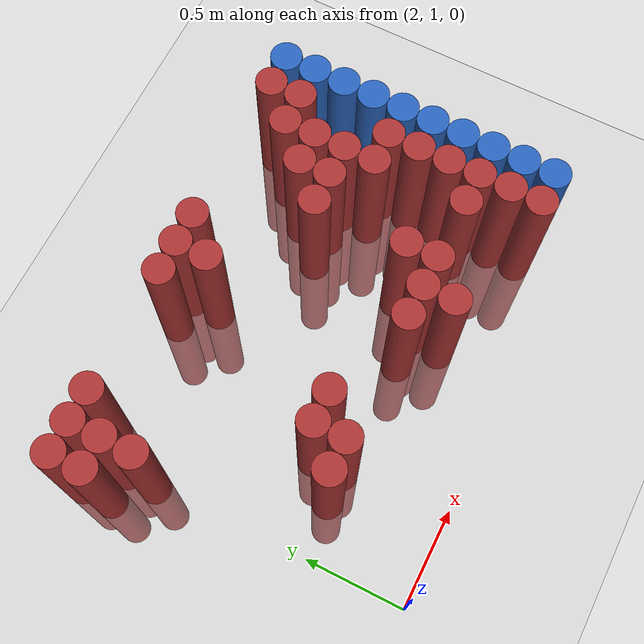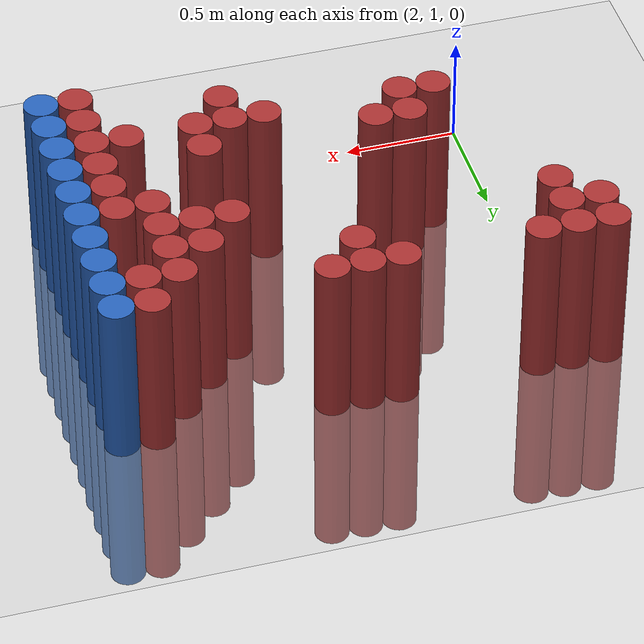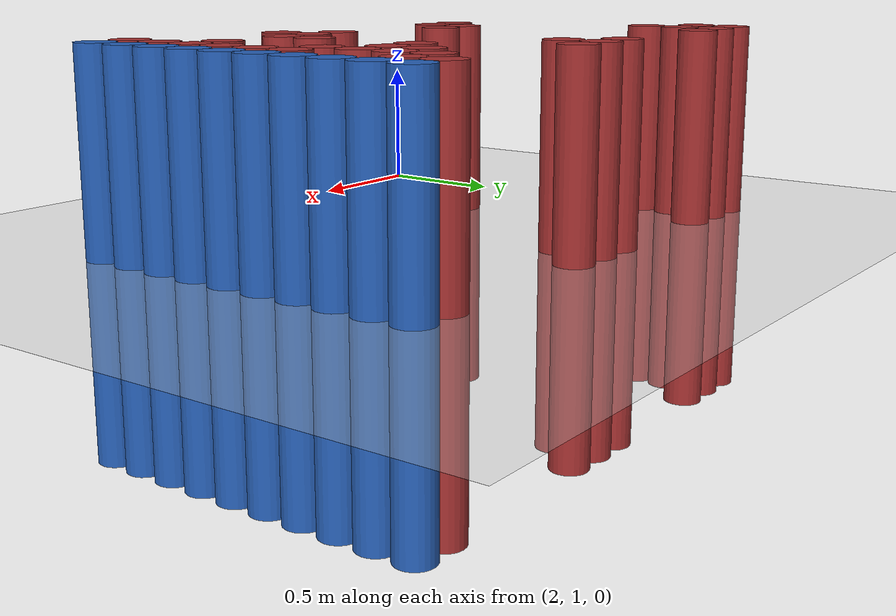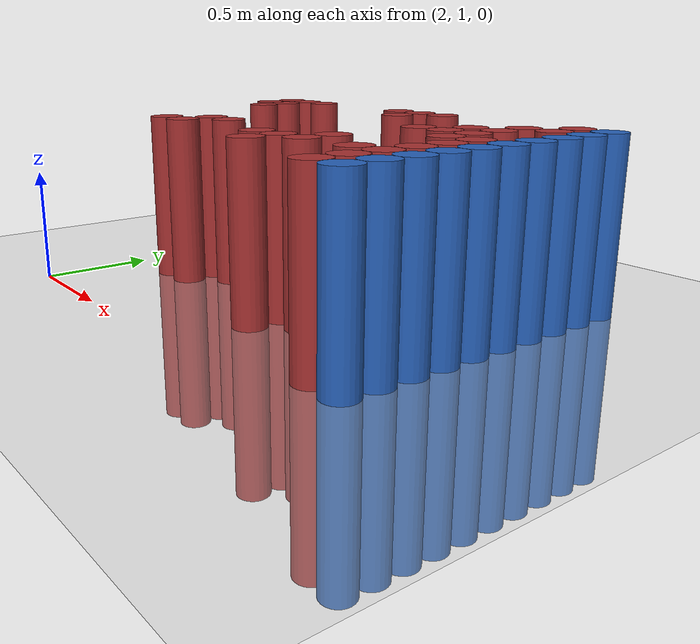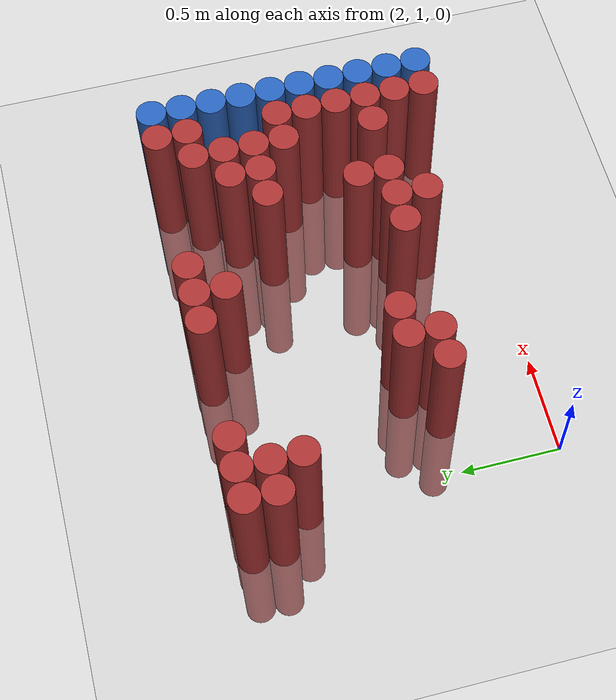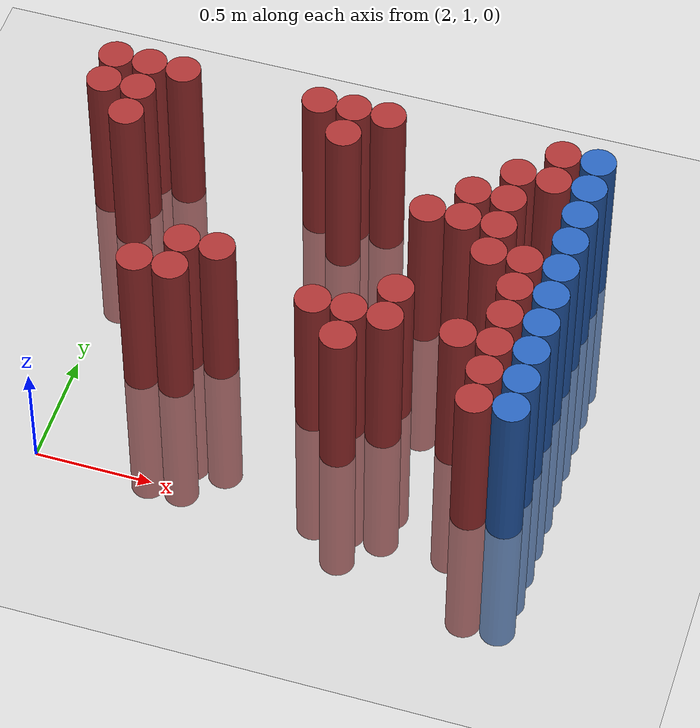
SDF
<sdf version="1.6">
 <world name="default">
  <model name="ground_plane">
   <static>1</static>
   <link name="link">
    <collision name="collision">
     <geometry><plane><normal>0 0 1</normal><size>100 100</size></plane></geometry>
     <surface><friction><ode><mu>100</mu><mu2>50</mu2></ode></friction></surface>
    </collision>
    <visual name="visual">
     <cast_shadows>0</cast_shadows>
     <geometry><plane><normal>0 0 1</normal><size>100 100</size></plane></geometry>
     <material>
      <script><uri>file://media/materials/scripts/gazebo.material</uri><name>Gazebo/Grey</name></script>
     </material>
    </visual>
   </link>
  </model>
  <model name="unit_cylinder_132">
   <static>1</static>
   <pose>3.925000 1.375000 0.000000 0.000000 0.000000 0.000000</pose>
   <link name="link">
    <inertial>
     <mass>1</mass>
     <inertia><ixx>0.145833</ixx><ixy>0</ixy><ixz>0</ixz><iyy>0.145833</iyy><iyz>0</iyz><izz>0.125</izz></inertia>
    </inertial>
    <collision name="collision">
     <geometry><cylinder><radius>0.075000</radius><length>1.5</length></cylinder></geometry>
    </collision>
    <visual name="visual">
     <geometry><cylinder><radius>0.075000</radius><length>1.5</length></cylinder></geometry>
     <material>
      <ambient>0.152000 0.379000 0.720000 1</ambient>
      <diffuse>0.152000 0.379000 0.720000 1</diffuse>
     </material>
     <material>
      <script><name>Gazebo/Grey</name><uri>file://media/materials/scripts/gazebo.material</uri></script>
     </material>
    </visual>
   </link>
  </model>
  <model name="unit_cylinder_134">
   <static>1</static>
   <pose>3.925000 1.525000 0.000000 0.000000 0.000000 0.000000</pose>
   <link name="link">
    <inertial>
     <mass>1</mass>
     <inertia><ixx>0.145833</ixx><ixy>0</ixy><ixz>0</ixz><iyy>0.145833</iyy><iyz>0</iyz><izz>0.125</izz></inertia>
    </inertial>
    <collision name="collision">
     <geometry><cylinder><radius>0.075000</radius><length>1.5</length></cylinder></geometry>
    </collision>
    <visual name="visual">
     <geometry><cylinder><radius>0.075000</radius><length>1.5</length></cylinder></geometry>
     <material>
      <ambient>0.152000 0.379000 0.720000 1</ambient>
      <diffuse>0.152000 0.379000 0.720000 1</diffuse>
     </material>
     <material>
      <script><name>Gazebo/Grey</name><uri>file://media/materials/scripts/gazebo.material</uri></script>
     </material>
    </visual>
   </link>
  </model>
  <model name="unit_cylinder_136">
   <static>1</static>
   <pose>3.925000 1.675000 0.000000 0.000000 0.000000 0.000000</pose>
   <link name="link">
    <inertial>
     <mass>1</mass>
     <inertia><ixx>0.145833</ixx><ixy>0</ixy><ixz>0</ixz><iyy>0.145833</iyy><iyz>0</iyz><izz>0.125</izz></inertia>
    </inertial>
    <collision name="collision">
     <geometry><cylinder><radius>0.075000</radius><length>1.5</length></cylinder></geometry>
    </collision>
    <visual name="visual">
     <geometry><cylinder><radius>0.075000</radius><length>1.5</length></cylinder></geometry>
     <material>
      <ambient>0.152000 0.379000 0.720000 1</ambient>
      <diffuse>0.152000 0.379000 0.720000 1</diffuse>
     </material>
     <material>
      <script><name>Gazebo/Grey</name><uri>file://media/materials/scripts/gazebo.material</uri></script>
     </material>
    </visual>
   </link>
  </model>
  <model name="unit_cylinder_138">
   <static>1</static>
   <pose>3.925000 1.825000 0.000000 0.000000 0.000000 0.000000</pose>
   <link name="link">
    <inertial>
     <mass>1</mass>
     <inertia><ixx>0.145833</ixx><ixy>0</ixy><ixz>0</ixz><iyy>0.145833</iyy><iyz>0</iyz><izz>0.125</izz></inertia>
    </inertial>
    <collision name="collision">
     <geometry><cylinder><radius>0.075000</radius><length>1.5</length></cylinder></geometry>
    </collision>
    <visual name="visual">
     <geometry><cylinder><radius>0.075000</radius><length>1.5</length></cylinder></geometry>
     <material>
      <ambient>0.152000 0.379000 0.720000 1</ambient>
      <diffuse>0.152000 0.379000 0.720000 1</diffuse>
     </material>
     <material>
      <script><name>Gazebo/Grey</name><uri>file://media/materials/scripts/gazebo.material</uri></script>
     </material>
    </visual>
   </link>
  </model>
  <model name="unit_cylinder_140">
   <static>1</static>
   <pose>3.925000 1.975000 0.000000 0.000000 0.000000 0.000000</pose>
   <link name="link">
    <inertial>
     <mass>1</mass>
     <inertia><ixx>0.145833</ixx><ixy>0</ixy><ixz>0</ixz><iyy>0.145833</iyy><iyz>0</iyz><izz>0.125</izz></inertia>
    </inertial>
    <collision name="collision">
     <geometry><cylinder><radius>0.075000</radius><length>1.5</length></cylinder></geometry>
    </collision>
    <visual name="visual">
     <geometry><cylinder><radius>0.075000</radius><length>1.5</length></cylinder></geometry>
     <material>
      <ambient>0.152000 0.379000 0.720000 1</ambient>
      <diffuse>0.152000 0.379000 0.720000 1</diffuse>
     </material>
     <material>
      <script><name>Gazebo/Grey</name><uri>file://media/materials/scripts/gazebo.material</uri></script>
     </material>
    </visual>
   </link>
  </model>
  <model name="unit_cylinder_142">
   <static>1</static>
   <pose>3.925000 2.125000 0.000000 0.000000 0.000000 0.000000</pose>
   <link name="link">
    <inertial>
     <mass>1</mass>
     <inertia><ixx>0.145833</ixx><ixy>0</ixy><ixz>0</ixz><iyy>0.145833</iyy><iyz>0</iyz><izz>0.125</izz></inertia>
    </inertial>
    <collision name="collision">
     <geometry><cylinder><radius>0.075000</radius><length>1.5</length></cylinder></geometry>
    </collision>
    <visual name="visual">
     <geometry><cylinder><radius>0.075000</radius><length>1.5</length></cylinder></geometry>
     <material>
      <ambient>0.152000 0.379000 0.720000 1</ambient>
      <diffuse>0.152000 0.379000 0.720000 1</diffuse>
     </material>
     <material>
      <script><name>Gazebo/Grey</name><uri>file://media/materials/scripts/gazebo.material</uri></script>
     </material>
    </visual>
   </link>
  </model>
  <model name="unit_cylinder_144">
   <static>1</static>
   <pose>3.925000 2.275000 0.000000 0.000000 0.000000 0.000000</pose>
   <link name="link">
    <inertial>
     <mass>1</mass>
     <inertia><ixx>0.145833</ixx><ixy>0</ixy><ixz>0</ixz><iyy>0.145833</iyy><iyz>0</iyz><izz>0.125</izz></inertia>
    </inertial>
    <collision name="collision">
     <geometry><cylinder><radius>0.075000</radius><length>1.5</length></cylinder></geometry>
    </collision>
    <visual name="visual">
     <geometry><cylinder><radius>0.075000</radius><length>1.5</length></cylinder></geometry>
     <material>
      <ambient>0.152000 0.379000 0.720000 1</ambient>
      <diffuse>0.152000 0.379000 0.720000 1</diffuse>
     </material>
     <material>
      <script><name>Gazebo/Grey</name><uri>file://media/materials/scripts/gazebo.material</uri></script>
     </material>
    </visual>
   </link>
  </model>
  <model name="unit_cylinder_146">
   <static>1</static>
   <pose>3.925000 2.425000 0.000000 0.000000 0.000000 0.000000</pose>
   <link name="link">
    <inertial>
     <mass>1</mass>
     <inertia><ixx>0.145833</ixx><ixy>0</ixy><ixz>0</ixz><iyy>0.145833</iyy><iyz>0</iyz><izz>0.125</izz></inertia>
    </inertial>
    <collision name="collision">
     <geometry><cylinder><radius>0.075000</radius><length>1.5</length></cylinder></geometry>
    </collision>
    <visual name="visual">
     <geometry><cylinder><radius>0.075000</radius><length>1.5</length></cylinder></geometry>
     <material>
      <ambient>0.152000 0.379000 0.720000 1</ambient>
      <diffuse>0.152000 0.379000 0.720000 1</diffuse>
     </material>
     <material>
      <script><name>Gazebo/Grey</name><uri>file://media/materials/scripts/gazebo.material</uri></script>
     </material>
    </visual>
   </link>
  </model>
  <model name="unit_cylinder_148">
   <static>1</static>
   <pose>3.925000 2.575000 0.000000 0.000000 0.000000 0.000000</pose>
   <link name="link">
    <inertial>
     <mass>1</mass>
     <inertia><ixx>0.145833</ixx><ixy>0</ixy><ixz>0</ixz><iyy>0.145833</iyy><iyz>0</iyz><izz>0.125</izz></inertia>
    </inertial>
    <collision name="collision">
     <geometry><cylinder><radius>0.075000</radius><length>1.5</length></cylinder></geometry>
    </collision>
    <visual name="visual">
     <geometry><cylinder><radius>0.075000</radius><length>1.5</length></cylinder></geometry>
     <material>
      <ambient>0.152000 0.379000 0.720000 1</ambient>
      <diffuse>0.152000 0.379000 0.720000 1</diffuse>
     </material>
     <material>
      <script><name>Gazebo/Grey</name><uri>file://media/materials/scripts/gazebo.material</uri></script>
     </material>
    </visual>
   </link>
  </model>
  <model name="unit_cylinder_379">
   <static>1</static>
   <pose>1.825000 2.425000 0.000000 0.000000 0.000000 0.000000</pose>
   <link name="link">
    <inertial>
     <mass>1</mass>
     <inertia><ixx>0.145833</ixx><ixy>0</ixy><ixz>0</ixz><iyy>0.145833</iyy><iyz>0</iyz><izz>0.125</izz></inertia>
    </inertial>
    <collision name="collision">
     <geometry><cylinder><radius>0.075000</radius><length>1.5</length></cylinder></geometry>
    </collision>
    <visual name="visual">
     <geometry><cylinder><radius>0.075000</radius><length>1.5</length></cylinder></geometry>
     <material>
      <ambient>0.648000 0.192000 0.192000 1</ambient>
      <diffuse>0.648000 0.192000 0.192000 1</diffuse>
     </material>
     <material>
      <script><name>Gazebo/Grey</name><uri>file://media/materials/scripts/gazebo.material</uri></script>
     </material>
    </visual>
   </link>
  </model>
  <model name="unit_cylinder_380">
   <static>1</static>
   <pose>1.825000 2.575000 0.000000 0.000000 0.000000 0.000000</pose>
   <link name="link">
    <inertial>
     <mass>1</mass>
     <inertia><ixx>0.145833</ixx><ixy>0</ixy><ixz>0</ixz><iyy>0.145833</iyy><iyz>0</iyz><izz>0.125</izz></inertia>
    </inertial>
    <collision name="collision">
     <geometry><cylinder><radius>0.075000</radius><length>1.5</length></cylinder></geometry>
    </collision>
    <visual name="visual">
     <geometry><cylinder><radius>0.075000</radius><length>1.5</length></cylinder></geometry>
     <material>
      <ambient>0.648000 0.192000 0.192000 1</ambient>
      <diffuse>0.648000 0.192000 0.192000 1</diffuse>
     </material>
     <material>
      <script><name>Gazebo/Grey</name><uri>file://media/materials/scripts/gazebo.material</uri></script>
     </material>
    </visual>
   </link>
  </model>
  <model name="unit_cylinder_381">
   <static>1</static>
   <pose>1.975000 2.275000 0.000000 0.000000 0.000000 0.000000</pose>
   <link name="link">
    <inertial>
     <mass>1</mass>
     <inertia><ixx>0.145833</ixx><ixy>0</ixy><ixz>0</ixz><iyy>0.145833</iyy><iyz>0</iyz><izz>0.125</izz></inertia>
    </inertial>
    <collision name="collision">
     <geometry><cylinder><radius>0.075000</radius><length>1.5</length></cylinder></geometry>
    </collision>
    <visual name="visual">
     <geometry><cylinder><radius>0.075000</radius><length>1.5</length></cylinder></geometry>
     <material>
      <ambient>0.648000 0.192000 0.192000 1</ambient>
      <diffuse>0.648000 0.192000 0.192000 1</diffuse>
     </material>
     <material>
      <script><name>Gazebo/Grey</name><uri>file://media/materials/scripts/gazebo.material</uri></script>
     </material>
    </visual>
   </link>
  </model>
  <model name="unit_cylinder_382">
   <static>1</static>
   <pose>1.975000 2.425000 0.000000 0.000000 0.000000 0.000000</pose>
   <link name="link">
    <inertial>
     <mass>1</mass>
     <inertia><ixx>0.145833</ixx><ixy>0</ixy><ixz>0</ixz><iyy>0.145833</iyy><iyz>0</iyz><izz>0.125</izz></inertia>
    </inertial>
    <collision name="collision">
     <geometry><cylinder><radius>0.075000</radius><length>1.5</length></cylinder></geometry>
    </collision>
    <visual name="visual">
     <geometry><cylinder><radius>0.075000</radius><length>1.5</length></cylinder></geometry>
     <material>
      <ambient>0.648000 0.192000 0.192000 1</ambient>
      <diffuse>0.648000 0.192000 0.192000 1</diffuse>
     </material>
     <material>
      <script><name>Gazebo/Grey</name><uri>file://media/materials/scripts/gazebo.material</uri></script>
     </material>
    </visual>
   </link>
  </model>
  <model name="unit_cylinder_383">
   <static>1</static>
   <pose>1.975000 2.575000 0.000000 0.000000 0.000000 0.000000</pose>
   <link name="link">
    <inertial>
     <mass>1</mass>
     <inertia><ixx>0.145833</ixx><ixy>0</ixy><ixz>0</ixz><iyy>0.145833</iyy><iyz>0</iyz><izz>0.125</izz></inertia>
    </inertial>
    <collision name="collision">
     <geometry><cylinder><radius>0.075000</radius><length>1.5</length></cylinder></geometry>
    </collision>
    <visual name="visual">
     <geometry><cylinder><radius>0.075000</radius><length>1.5</length></cylinder></geometry>
     <material>
      <ambient>0.648000 0.192000 0.192000 1</ambient>
      <diffuse>0.648000 0.192000 0.192000 1</diffuse>
     </material>
     <material>
      <script><name>Gazebo/Grey</name><uri>file://media/materials/scripts/gazebo.material</uri></script>
     </material>
    </visual>
   </link>
  </model>
  <model name="unit_cylinder_385">
   <static>1</static>
   <pose>2.125000 2.575000 0.000000 0.000000 0.000000 0.000000</pose>
   <link name="link">
    <inertial>
     <mass>1</mass>
     <inertia><ixx>0.145833</ixx><ixy>0</ixy><ixz>0</ixz><iyy>0.145833</iyy><iyz>0</iyz><izz>0.125</izz></inertia>
    </inertial>
    <collision name="collision">
     <geometry><cylinder><radius>0.075000</radius><length>1.5</length></cylinder></geometry>
    </collision>
    <visual name="visual">
     <geometry><cylinder><radius>0.075000</radius><length>1.5</length></cylinder></geometry>
     <material>
      <ambient>0.648000 0.192000 0.192000 1</ambient>
      <diffuse>0.648000 0.192000 0.192000 1</diffuse>
     </material>
     <material>
      <script><name>Gazebo/Grey</name><uri>file://media/materials/scripts/gazebo.material</uri></script>
     </material>
    </visual>
   </link>
  </model>
  <model name="unit_cylinder_391">
   <static>1</static>
   <pose>2.275000 1.525000 0.000000 0.000000 0.000000 0.000000</pose>
   <link name="link">
    <inertial>
     <mass>1</mass>
     <inertia><ixx>0.145833</ixx><ixy>0</ixy><ixz>0</ixz><iyy>0.145833</iyy><iyz>0</iyz><izz>0.125</izz></inertia>
    </inertial>
    <collision name="collision">
     <geometry><cylinder><radius>0.075000</radius><length>1.5</length></cylinder></geometry>
    </collision>
    <visual name="visual">
     <geometry><cylinder><radius>0.075000</radius><length>1.5</length></cylinder></geometry>
     <material>
      <ambient>0.648000 0.192000 0.192000 1</ambient>
      <diffuse>0.648000 0.192000 0.192000 1</diffuse>
     </material>
     <material>
      <script><name>Gazebo/Grey</name><uri>file://media/materials/scripts/gazebo.material</uri></script>
     </material>
    </visual>
   </link>
  </model>
  <model name="unit_cylinder_394">
   <static>1</static>
   <pose>2.425000 1.525000 0.000000 0.000000 0.000000 0.000000</pose>
   <link name="link">
    <inertial>
     <mass>1</mass>
     <inertia><ixx>0.145833</ixx><ixy>0</ixy><ixz>0</ixz><iyy>0.145833</iyy><iyz>0</iyz><izz>0.125</izz></inertia>
    </inertial>
    <collision name="collision">
     <geometry><cylinder><radius>0.075000</radius><length>1.5</length></cylinder></geometry>
    </collision>
    <visual name="visual">
     <geometry><cylinder><radius>0.075000</radius><length>1.5</length></cylinder></geometry>
     <material>
      <ambient>0.648000 0.192000 0.192000 1</ambient>
      <diffuse>0.648000 0.192000 0.192000 1</diffuse>
     </material>
     <material>
      <script><name>Gazebo/Grey</name><uri>file://media/materials/scripts/gazebo.material</uri></script>
     </material>
    </visual>
   </link>
  </model>
  <model name="unit_cylinder_395">
   <static>1</static>
   <pose>2.425000 1.675000 0.000000 0.000000 0.000000 0.000000</pose>
   <link name="link">
    <inertial>
     <mass>1</mass>
     <inertia><ixx>0.145833</ixx><ixy>0</ixy><ixz>0</ixz><iyy>0.145833</iyy><iyz>0</iyz><izz>0.125</izz></inertia>
    </inertial>
    <collision name="collision">
     <geometry><cylinder><radius>0.075000</radius><length>1.5</length></cylinder></geometry>
    </collision>
    <visual name="visual">
     <geometry><cylinder><radius>0.075000</radius><length>1.5</length></cylinder></geometry>
     <material>
      <ambient>0.648000 0.192000 0.192000 1</ambient>
      <diffuse>0.648000 0.192000 0.192000 1</diffuse>
     </material>
     <material>
      <script><name>Gazebo/Grey</name><uri>file://media/materials/scripts/gazebo.material</uri></script>
     </material>
    </visual>
   </link>
  </model>
  <model name="unit_cylinder_396">
   <static>1</static>
   <pose>2.575000 1.675000 0.000000 0.000000 0.000000 0.000000</pose>
   <link name="link">
    <inertial>
     <mass>1</mass>
     <inertia><ixx>0.145833</ixx><ixy>0</ixy><ixz>0</ixz><iyy>0.145833</iyy><iyz>0</iyz><izz>0.125</izz></inertia>
    </inertial>
    <collision name="collision">
     <geometry><cylinder><radius>0.075000</radius><length>1.5</length></cylinder></geometry>
    </collision>
    <visual name="visual">
     <geometry><cylinder><radius>0.075000</radius><length>1.5</length></cylinder></geometry>
     <material>
      <ambient>0.648000 0.192000 0.192000 1</ambient>
      <diffuse>0.648000 0.192000 0.192000 1</diffuse>
     </material>
     <material>
      <script><name>Gazebo/Grey</name><uri>file://media/materials/scripts/gazebo.material</uri></script>
     </material>
    </visual>
   </link>
  </model>
  <model name="unit_cylinder_401">
   <static>1</static>
   <pose>2.725000 2.575000 0.000000 0.000000 0.000000 0.000000</pose>
   <link name="link">
    <inertial>
     <mass>1</mass>
     <inertia><ixx>0.145833</ixx><ixy>0</ixy><ixz>0</ixz><iyy>0.145833</iyy><iyz>0</iyz><izz>0.125</izz></inertia>
    </inertial>
    <collision name="collision">
     <geometry><cylinder><radius>0.075000</radius><length>1.5</length></cylinder></geometry>
    </collision>
    <visual name="visual">
     <geometry><cylinder><radius>0.075000</radius><length>1.5</length></cylinder></geometry>
     <material>
      <ambient>0.648000 0.192000 0.192000 1</ambient>
      <diffuse>0.648000 0.192000 0.192000 1</diffuse>
     </material>
     <material>
      <script><name>Gazebo/Grey</name><uri>file://media/materials/scripts/gazebo.material</uri></script>
     </material>
    </visual>
   </link>
  </model>
  <model name="unit_cylinder_407">
   <static>1</static>
   <pose>2.875000 2.425000 0.000000 0.000000 0.000000 0.000000</pose>
   <link name="link">
    <inertial>
     <mass>1</mass>
     <inertia><ixx>0.145833</ixx><ixy>0</ixy><ixz>0</ixz><iyy>0.145833</iyy><iyz>0</iyz><izz>0.125</izz></inertia>
    </inertial>
    <collision name="collision">
     <geometry><cylinder><radius>0.075000</radius><length>1.5</length></cylinder></geometry>
    </collision>
    <visual name="visual">
     <geometry><cylinder><radius>0.075000</radius><length>1.5</length></cylinder></geometry>
     <material>
      <ambient>0.648000 0.192000 0.192000 1</ambient>
      <diffuse>0.648000 0.192000 0.192000 1</diffuse>
     </material>
     <material>
      <script><name>Gazebo/Grey</name><uri>file://media/materials/scripts/gazebo.material</uri></script>
     </material>
    </visual>
   </link>
  </model>
  <model name="unit_cylinder_408">
   <static>1</static>
   <pose>2.875000 2.575000 0.000000 0.000000 0.000000 0.000000</pose>
   <link name="link">
    <inertial>
     <mass>1</mass>
     <inertia><ixx>0.145833</ixx><ixy>0</ixy><ixz>0</ixz><iyy>0.145833</iyy><iyz>0</iyz><izz>0.125</izz></inertia>
    </inertial>
    <collision name="collision">
     <geometry><cylinder><radius>0.075000</radius><length>1.5</length></cylinder></geometry>
    </collision>
    <visual name="visual">
     <geometry><cylinder><radius>0.075000</radius><length>1.5</length></cylinder></geometry>
     <material>
      <ambient>0.648000 0.192000 0.192000 1</ambient>
      <diffuse>0.648000 0.192000 0.192000 1</diffuse>
     </material>
     <material>
      <script><name>Gazebo/Grey</name><uri>file://media/materials/scripts/gazebo.material</uri></script>
     </material>
    </visual>
   </link>
  </model>
  <model name="unit_cylinder_413">
   <static>1</static>
   <pose>3.025000 1.525000 0.000000 0.000000 0.000000 0.000000</pose>
   <link name="link">
    <inertial>
     <mass>1</mass>
     <inertia><ixx>0.145833</ixx><ixy>0</ixy><ixz>0</ixz><iyy>0.145833</iyy><iyz>0</iyz><izz>0.125</izz></inertia>
    </inertial>
    <collision name="collision">
     <geometry><cylinder><radius>0.075000</radius><length>1.5</length></cylinder></geometry>
    </collision>
    <visual name="visual">
     <geometry><cylinder><radius>0.075000</radius><length>1.5</length></cylinder></geometry>
     <material>
      <ambient>0.648000 0.192000 0.192000 1</ambient>
      <diffuse>0.648000 0.192000 0.192000 1</diffuse>
     </material>
     <material>
      <script><name>Gazebo/Grey</name><uri>file://media/materials/scripts/gazebo.material</uri></script>
     </material>
    </visual>
   </link>
  </model>
  <model name="unit_cylinder_414">
   <static>1</static>
   <pose>3.025000 2.575000 0.000000 0.000000 0.000000 0.000000</pose>
   <link name="link">
    <inertial>
     <mass>1</mass>
     <inertia><ixx>0.145833</ixx><ixy>0</ixy><ixz>0</ixz><iyy>0.145833</iyy><iyz>0</iyz><izz>0.125</izz></inertia>
    </inertial>
    <collision name="collision">
     <geometry><cylinder><radius>0.075000</radius><length>1.5</length></cylinder></geometry>
    </collision>
    <visual name="visual">
     <geometry><cylinder><radius>0.075000</radius><length>1.5</length></cylinder></geometry>
     <material>
      <ambient>0.648000 0.192000 0.192000 1</ambient>
      <diffuse>0.648000 0.192000 0.192000 1</diffuse>
     </material>
     <material>
      <script><name>Gazebo/Grey</name><uri>file://media/materials/scripts/gazebo.material</uri></script>
     </material>
    </visual>
   </link>
  </model>
  <model name="unit_cylinder_418">
   <static>1</static>
   <pose>3.175000 1.375000 0.000000 0.000000 0.000000 0.000000</pose>
   <link name="link">
    <inertial>
     <mass>1</mass>
     <inertia><ixx>0.145833</ixx><ixy>0</ixy><ixz>0</ixz><iyy>0.145833</iyy><iyz>0</iyz><izz>0.125</izz></inertia>
    </inertial>
    <collision name="collision">
     <geometry><cylinder><radius>0.075000</radius><length>1.5</length></cylinder></geometry>
    </collision>
    <visual name="visual">
     <geometry><cylinder><radius>0.075000</radius><length>1.5</length></cylinder></geometry>
     <material>
      <ambient>0.648000 0.192000 0.192000 1</ambient>
      <diffuse>0.648000 0.192000 0.192000 1</diffuse>
     </material>
     <material>
      <script><name>Gazebo/Grey</name><uri>file://media/materials/scripts/gazebo.material</uri></script>
     </material>
    </visual>
   </link>
  </model>
  <model name="unit_cylinder_419">
   <static>1</static>
   <pose>3.175000 1.525000 0.000000 0.000000 0.000000 0.000000</pose>
   <link name="link">
    <inertial>
     <mass>1</mass>
     <inertia><ixx>0.145833</ixx><ixy>0</ixy><ixz>0</ixz><iyy>0.145833</iyy><iyz>0</iyz><izz>0.125</izz></inertia>
    </inertial>
    <collision name="collision">
     <geometry><cylinder><radius>0.075000</radius><length>1.5</length></cylinder></geometry>
    </collision>
    <visual name="visual">
     <geometry><cylinder><radius>0.075000</radius><length>1.5</length></cylinder></geometry>
     <material>
      <ambient>0.648000 0.192000 0.192000 1</ambient>
      <diffuse>0.648000 0.192000 0.192000 1</diffuse>
     </material>
     <material>
      <script><name>Gazebo/Grey</name><uri>file://media/materials/scripts/gazebo.material</uri></script>
     </material>
    </visual>
   </link>
  </model>
  <model name="unit_cylinder_425">
   <static>1</static>
   <pose>3.325000 1.525000 0.000000 0.000000 0.000000 0.000000</pose>
   <link name="link">
    <inertial>
     <mass>1</mass>
     <inertia><ixx>0.145833</ixx><ixy>0</ixy><ixz>0</ixz><iyy>0.145833</iyy><iyz>0</iyz><izz>0.125</izz></inertia>
    </inertial>
    <collision name="collision">
     <geometry><cylinder><radius>0.075000</radius><length>1.5</length></cylinder></geometry>
    </collision>
    <visual name="visual">
     <geometry><cylinder><radius>0.075000</radius><length>1.5</length></cylinder></geometry>
     <material>
      <ambient>0.648000 0.192000 0.192000 1</ambient>
      <diffuse>0.648000 0.192000 0.192000 1</diffuse>
     </material>
     <material>
      <script><name>Gazebo/Grey</name><uri>file://media/materials/scripts/gazebo.material</uri></script>
     </material>
    </visual>
   </link>
  </model>
  <model name="unit_cylinder_426">
   <static>1</static>
   <pose>3.325000 1.675000 0.000000 0.000000 0.000000 0.000000</pose>
   <link name="link">
    <inertial>
     <mass>1</mass>
     <inertia><ixx>0.145833</ixx><ixy>0</ixy><ixz>0</ixz><iyy>0.145833</iyy><iyz>0</iyz><izz>0.125</izz></inertia>
    </inertial>
    <collision name="collision">
     <geometry><cylinder><radius>0.075000</radius><length>1.5</length></cylinder></geometry>
    </collision>
    <visual name="visual">
     <geometry><cylinder><radius>0.075000</radius><length>1.5</length></cylinder></geometry>
     <material>
      <ambient>0.648000 0.192000 0.192000 1</ambient>
      <diffuse>0.648000 0.192000 0.192000 1</diffuse>
     </material>
     <material>
      <script><name>Gazebo/Grey</name><uri>file://media/materials/scripts/gazebo.material</uri></script>
     </material>
    </visual>
   </link>
  </model>
  <model name="unit_cylinder_427">
   <static>1</static>
   <pose>3.325000 2.125000 0.000000 0.000000 0.000000 0.000000</pose>
   <link name="link">
    <inertial>
     <mass>1</mass>
     <inertia><ixx>0.145833</ixx><ixy>0</ixy><ixz>0</ixz><iyy>0.145833</iyy><iyz>0</iyz><izz>0.125</izz></inertia>
    </inertial>
    <collision name="collision">
     <geometry><cylinder><radius>0.075000</radius><length>1.5</length></cylinder></geometry>
    </collision>
    <visual name="visual">
     <geometry><cylinder><radius>0.075000</radius><length>1.5</length></cylinder></geometry>
     <material>
      <ambient>0.648000 0.192000 0.192000 1</ambient>
      <diffuse>0.648000 0.192000 0.192000 1</diffuse>
     </material>
     <material>
      <script><name>Gazebo/Grey</name><uri>file://media/materials/scripts/gazebo.material</uri></script>
     </material>
    </visual>
   </link>
  </model>
  <model name="unit_cylinder_435">
   <static>1</static>
   <pose>3.475000 2.125000 0.000000 0.000000 0.000000 0.000000</pose>
   <link name="link">
    <inertial>
     <mass>1</mass>
     <inertia><ixx>0.145833</ixx><ixy>0</ixy><ixz>0</ixz><iyy>0.145833</iyy><iyz>0</iyz><izz>0.125</izz></inertia>
    </inertial>
    <collision name="collision">
     <geometry><cylinder><radius>0.075000</radius><length>1.5</length></cylinder></geometry>
    </collision>
    <visual name="visual">
     <geometry><cylinder><radius>0.075000</radius><length>1.5</length></cylinder></geometry>
     <material>
      <ambient>0.648000 0.192000 0.192000 1</ambient>
      <diffuse>0.648000 0.192000 0.192000 1</diffuse>
     </material>
     <material>
      <script><name>Gazebo/Grey</name><uri>file://media/materials/scripts/gazebo.material</uri></script>
     </material>
    </visual>
   </link>
  </model>
  <model name="unit_cylinder_436">
   <static>1</static>
   <pose>3.475000 2.275000 0.000000 0.000000 0.000000 0.000000</pose>
   <link name="link">
    <inertial>
     <mass>1</mass>
     <inertia><ixx>0.145833</ixx><ixy>0</ixy><ixz>0</ixz><iyy>0.145833</iyy><iyz>0</iyz><izz>0.125</izz></inertia>
    </inertial>
    <collision name="collision">
     <geometry><cylinder><radius>0.075000</radius><length>1.5</length></cylinder></geometry>
    </collision>
    <visual name="visual">
     <geometry><cylinder><radius>0.075000</radius><length>1.5</length></cylinder></geometry>
     <material>
      <ambient>0.648000 0.192000 0.192000 1</ambient>
      <diffuse>0.648000 0.192000 0.192000 1</diffuse>
     </material>
     <material>
      <script><name>Gazebo/Grey</name><uri>file://media/materials/scripts/gazebo.material</uri></script>
     </material>
    </visual>
   </link>
  </model>
  <model name="unit_cylinder_447">
   <static>1</static>
   <pose>3.625000 1.525000 0.000000 0.000000 0.000000 0.000000</pose>
   <link name="link">
    <inertial>
     <mass>1</mass>
     <inertia><ixx>0.145833</ixx><ixy>0</ixy><ixz>0</ixz><iyy>0.145833</iyy><iyz>0</iyz><izz>0.125</izz></inertia>
    </inertial>
    <collision name="collision">
     <geometry><cylinder><radius>0.075000</radius><length>1.5</length></cylinder></geometry>
    </collision>
    <visual name="visual">
     <geometry><cylinder><radius>0.075000</radius><length>1.5</length></cylinder></geometry>
     <material>
      <ambient>0.648000 0.192000 0.192000 1</ambient>
      <diffuse>0.648000 0.192000 0.192000 1</diffuse>
     </material>
     <material>
      <script><name>Gazebo/Grey</name><uri>file://media/materials/scripts/gazebo.material</uri></script>
     </material>
    </visual>
   </link>
  </model>
  <model name="unit_cylinder_448">
   <static>1</static>
   <pose>3.625000 1.975000 0.000000 0.000000 0.000000 0.000000</pose>
   <link name="link">
    <inertial>
     <mass>1</mass>
     <inertia><ixx>0.145833</ixx><ixy>0</ixy><ixz>0</ixz><iyy>0.145833</iyy><iyz>0</iyz><izz>0.125</izz></inertia>
    </inertial>
    <collision name="collision">
     <geometry><cylinder><radius>0.075000</radius><length>1.5</length></cylinder></geometry>
    </collision>
    <visual name="visual">
     <geometry><cylinder><radius>0.075000</radius><length>1.5</length></cylinder></geometry>
     <material>
      <ambient>0.648000 0.192000 0.192000 1</ambient>
      <diffuse>0.648000 0.192000 0.192000 1</diffuse>
     </material>
     <material>
      <script><name>Gazebo/Grey</name><uri>file://media/materials/scripts/gazebo.material</uri></script>
     </material>
    </visual>
   </link>
  </model>
  <model name="unit_cylinder_449">
   <static>1</static>
   <pose>3.625000 2.125000 0.000000 0.000000 0.000000 0.000000</pose>
   <link name="link">
    <inertial>
     <mass>1</mass>
     <inertia><ixx>0.145833</ixx><ixy>0</ixy><ixz>0</ixz><iyy>0.145833</iyy><iyz>0</iyz><izz>0.125</izz></inertia>
    </inertial>
    <collision name="collision">
     <geometry><cylinder><radius>0.075000</radius><length>1.5</length></cylinder></geometry>
    </collision>
    <visual name="visual">
     <geometry><cylinder><radius>0.075000</radius><length>1.5</length></cylinder></geometry>
     <material>
      <ambient>0.648000 0.192000 0.192000 1</ambient>
      <diffuse>0.648000 0.192000 0.192000 1</diffuse>
     </material>
     <material>
      <script><name>Gazebo/Grey</name><uri>file://media/materials/scripts/gazebo.material</uri></script>
     </material>
    </visual>
   </link>
  </model>
  <model name="unit_cylinder_450">
   <static>1</static>
   <pose>3.625000 2.275000 0.000000 0.000000 0.000000 0.000000</pose>
   <link name="link">
    <inertial>
     <mass>1</mass>
     <inertia><ixx>0.145833</ixx><ixy>0</ixy><ixz>0</ixz><iyy>0.145833</iyy><iyz>0</iyz><izz>0.125</izz></inertia>
    </inertial>
    <collision name="collision">
     <geometry><cylinder><radius>0.075000</radius><length>1.5</length></cylinder></geometry>
    </collision>
    <visual name="visual">
     <geometry><cylinder><radius>0.075000</radius><length>1.5</length></cylinder></geometry>
     <material>
      <ambient>0.648000 0.192000 0.192000 1</ambient>
      <diffuse>0.648000 0.192000 0.192000 1</diffuse>
     </material>
     <material>
      <script><name>Gazebo/Grey</name><uri>file://media/materials/scripts/gazebo.material</uri></script>
     </material>
    </visual>
   </link>
  </model>
  <model name="unit_cylinder_451">
   <static>1</static>
   <pose>3.625000 2.425000 0.000000 0.000000 0.000000 0.000000</pose>
   <link name="link">
    <inertial>
     <mass>1</mass>
     <inertia><ixx>0.145833</ixx><ixy>0</ixy><ixz>0</ixz><iyy>0.145833</iyy><iyz>0</iyz><izz>0.125</izz></inertia>
    </inertial>
    <collision name="collision">
     <geometry><cylinder><radius>0.075000</radius><length>1.5</length></cylinder></geometry>
    </collision>
    <visual name="visual">
     <geometry><cylinder><radius>0.075000</radius><length>1.5</length></cylinder></geometry>
     <material>
      <ambient>0.648000 0.192000 0.192000 1</ambient>
      <diffuse>0.648000 0.192000 0.192000 1</diffuse>
     </material>
     <material>
      <script><name>Gazebo/Grey</name><uri>file://media/materials/scripts/gazebo.material</uri></script>
     </material>
    </visual>
   </link>
  </model>
  <model name="unit_cylinder_467">
   <static>1</static>
   <pose>3.775000 1.225000 0.000000 0.000000 0.000000 0.000000</pose>
   <link name="link">
    <inertial>
     <mass>1</mass>
     <inertia><ixx>0.145833</ixx><ixy>0</ixy><ixz>0</ixz><iyy>0.145833</iyy><iyz>0</iyz><izz>0.125</izz></inertia>
    </inertial>
    <collision name="collision">
     <geometry><cylinder><radius>0.075000</radius><length>1.5</length></cylinder></geometry>
    </collision>
    <visual name="visual">
     <geometry><cylinder><radius>0.075000</radius><length>1.5</length></cylinder></geometry>
     <material>
      <ambient>0.648000 0.192000 0.192000 1</ambient>
      <diffuse>0.648000 0.192000 0.192000 1</diffuse>
     </material>
     <material>
      <script><name>Gazebo/Grey</name><uri>file://media/materials/scripts/gazebo.material</uri></script>
     </material>
    </visual>
   </link>
  </model>
  <model name="unit_cylinder_468">
   <static>1</static>
   <pose>3.775000 1.375000 0.000000 0.000000 0.000000 0.000000</pose>
   <link name="link">
    <inertial>
     <mass>1</mass>
     <inertia><ixx>0.145833</ixx><ixy>0</ixy><ixz>0</ixz><iyy>0.145833</iyy><iyz>0</iyz><izz>0.125</izz></inertia>
    </inertial>
    <collision name="collision">
     <geometry><cylinder><radius>0.075000</radius><length>1.5</length></cylinder></geometry>
    </collision>
    <visual name="visual">
     <geometry><cylinder><radius>0.075000</radius><length>1.5</length></cylinder></geometry>
     <material>
      <ambient>0.648000 0.192000 0.192000 1</ambient>
      <diffuse>0.648000 0.192000 0.192000 1</diffuse>
     </material>
     <material>
      <script><name>Gazebo/Grey</name><uri>file://media/materials/scripts/gazebo.material</uri></script>
     </material>
    </visual>
   </link>
  </model>
  <model name="unit_cylinder_469">
   <static>1</static>
   <pose>3.775000 1.525000 0.000000 0.000000 0.000000 0.000000</pose>
   <link name="link">
    <inertial>
     <mass>1</mass>
     <inertia><ixx>0.145833</ixx><ixy>0</ixy><ixz>0</ixz><iyy>0.145833</iyy><iyz>0</iyz><izz>0.125</izz></inertia>
    </inertial>
    <collision name="collision">
     <geometry><cylinder><radius>0.075000</radius><length>1.5</length></cylinder></geometry>
    </collision>
    <visual name="visual">
     <geometry><cylinder><radius>0.075000</radius><length>1.5</length></cylinder></geometry>
     <material>
      <ambient>0.648000 0.192000 0.192000 1</ambient>
      <diffuse>0.648000 0.192000 0.192000 1</diffuse>
     </material>
     <material>
      <script><name>Gazebo/Grey</name><uri>file://media/materials/scripts/gazebo.material</uri></script>
     </material>
    </visual>
   </link>
  </model>
  <model name="unit_cylinder_470">
   <static>1</static>
   <pose>3.775000 1.675000 0.000000 0.000000 0.000000 0.000000</pose>
   <link name="link">
    <inertial>
     <mass>1</mass>
     <inertia><ixx>0.145833</ixx><ixy>0</ixy><ixz>0</ixz><iyy>0.145833</iyy><iyz>0</iyz><izz>0.125</izz></inertia>
    </inertial>
    <collision name="collision">
     <geometry><cylinder><radius>0.075000</radius><length>1.5</length></cylinder></geometry>
    </collision>
    <visual name="visual">
     <geometry><cylinder><radius>0.075000</radius><length>1.5</length></cylinder></geometry>
     <material>
      <ambient>0.648000 0.192000 0.192000 1</ambient>
      <diffuse>0.648000 0.192000 0.192000 1</diffuse>
     </material>
     <material>
      <script><name>Gazebo/Grey</name><uri>file://media/materials/scripts/gazebo.material</uri></script>
     </material>
    </visual>
   </link>
  </model>
  <model name="unit_cylinder_471">
   <static>1</static>
   <pose>3.775000 1.825000 0.000000 0.000000 0.000000 0.000000</pose>
   <link name="link">
    <inertial>
     <mass>1</mass>
     <inertia><ixx>0.145833</ixx><ixy>0</ixy><ixz>0</ixz><iyy>0.145833</iyy><iyz>0</iyz><izz>0.125</izz></inertia>
    </inertial>
    <collision name="collision">
     <geometry><cylinder><radius>0.075000</radius><length>1.5</length></cylinder></geometry>
    </collision>
    <visual name="visual">
     <geometry><cylinder><radius>0.075000</radius><length>1.5</length></cylinder></geometry>
     <material>
      <ambient>0.648000 0.192000 0.192000 1</ambient>
      <diffuse>0.648000 0.192000 0.192000 1</diffuse>
     </material>
     <material>
      <script><name>Gazebo/Grey</name><uri>file://media/materials/scripts/gazebo.material</uri></script>
     </material>
    </visual>
   </link>
  </model>
  <model name="unit_cylinder_472">
   <static>1</static>
   <pose>3.775000 1.975000 0.000000 0.000000 0.000000 0.000000</pose>
   <link name="link">
    <inertial>
     <mass>1</mass>
     <inertia><ixx>0.145833</ixx><ixy>0</ixy><ixz>0</ixz><iyy>0.145833</iyy><iyz>0</iyz><izz>0.125</izz></inertia>
    </inertial>
    <collision name="collision">
     <geometry><cylinder><radius>0.075000</radius><length>1.5</length></cylinder></geometry>
    </collision>
    <visual name="visual">
     <geometry><cylinder><radius>0.075000</radius><length>1.5</length></cylinder></geometry>
     <material>
      <ambient>0.648000 0.192000 0.192000 1</ambient>
      <diffuse>0.648000 0.192000 0.192000 1</diffuse>
     </material>
     <material>
      <script><name>Gazebo/Grey</name><uri>file://media/materials/scripts/gazebo.material</uri></script>
     </material>
    </visual>
   </link>
  </model>
  <model name="unit_cylinder_473">
   <static>1</static>
   <pose>3.775000 2.425000 0.000000 0.000000 0.000000 0.000000</pose>
   <link name="link">
    <inertial>
     <mass>1</mass>
     <inertia><ixx>0.145833</ixx><ixy>0</ixy><ixz>0</ixz><iyy>0.145833</iyy><iyz>0</iyz><izz>0.125</izz></inertia>
    </inertial>
    <collision name="collision">
     <geometry><cylinder><radius>0.075000</radius><length>1.5</length></cylinder></geometry>
    </collision>
    <visual name="visual">
     <geometry><cylinder><radius>0.075000</radius><length>1.5</length></cylinder></geometry>
     <material>
      <ambient>0.648000 0.192000 0.192000 1</ambient>
      <diffuse>0.648000 0.192000 0.192000 1</diffuse>
     </material>
     <material>
      <script><name>Gazebo/Grey</name><uri>file://media/materials/scripts/gazebo.material</uri></script>
     </material>
    </visual>
   </link>
  </model>
  <model name="unit_cylinder_474">
   <static>1</static>
   <pose>3.775000 2.575000 0.000000 0.000000 0.000000 0.000000</pose>
   <link name="link">
    <inertial>
     <mass>1</mass>
     <inertia><ixx>0.145833</ixx><ixy>0</ixy><ixz>0</ixz><iyy>0.145833</iyy><iyz>0</iyz><izz>0.125</izz></inertia>
    </inertial>
    <collision name="collision">
     <geometry><cylinder><radius>0.075000</radius><length>1.5</length></cylinder></geometry>
    </collision>
    <visual name="visual">
     <geometry><cylinder><radius>0.075000</radius><length>1.5</length></cylinder></geometry>
     <material>
      <ambient>0.648000 0.192000 0.192000 1</ambient>
      <diffuse>0.648000 0.192000 0.192000 1</diffuse>
     </material>
     <material>
      <script><name>Gazebo/Grey</name><uri>file://media/materials/scripts/gazebo.material</uri></script>
     </material>
    </visual>
   </link>
  </model>
  <model name="unit_cylinder_508">
   <static>1</static>
   <pose>3.925000 1.225000 0.000000 0.000000 0.000000 0.000000</pose>
   <link name="link">
    <inertial>
     <mass>1</mass>
     <inertia><ixx>0.145833</ixx><ixy>0</ixy><ixz>0</ixz><iyy>0.145833</iyy><iyz>0</iyz><izz>0.125</izz></inertia>
    </inertial>
    <collision name="collision">
     <geometry><cylinder><radius>0.075000</radius><length>1.5</length></cylinder></geometry>
    </collision>
    <visual name="visual">
     <geometry><cylinder><radius>0.075000</radius><length>1.5</length></cylinder></geometry>
     <material>
      <ambient>0.152000 0.379000 0.720000 1</ambient>
      <diffuse>0.152000 0.379000 0.720000 1</diffuse>
     </material>
     <material>
      <script><name>Gazebo/Grey</name><uri>file://media/materials/scripts/gazebo.material</uri></script>
     </material>
    </visual>
   </link>
  </model>
  <model name="unit_cylinder_509">
   <static>1</static>
   <pose>3.925000 1.375000 0.000000 0.000000 0.000000 0.000000</pose>
   <link name="link">
    <inertial>
     <mass>1</mass>
     <inertia><ixx>0.145833</ixx><ixy>0</ixy><ixz>0</ixz><iyy>0.145833</iyy><iyz>0</iyz><izz>0.125</izz></inertia>
    </inertial>
    <collision name="collision">
     <geometry><cylinder><radius>0.075000</radius><length>1.5</length></cylinder></geometry>
    </collision>
    <visual name="visual">
     <geometry><cylinder><radius>0.075000</radius><length>1.5</length></cylinder></geometry>
     <material>
      <ambient>0.152000 0.379000 0.720000 1</ambient>
      <diffuse>0.152000 0.379000 0.720000 1</diffuse>
     </material>
     <material>
      <script><name>Gazebo/Grey</name><uri>file://media/materials/scripts/gazebo.material</uri></script>
     </material>
    </visual>
   </link>
  </model>
  <model name="unit_cylinder_510">
   <static>1</static>
   <pose>3.925000 1.525000 0.000000 0.000000 0.000000 0.000000</pose>
   <link name="link">
    <inertial>
     <mass>1</mass>
     <inertia><ixx>0.145833</ixx><ixy>0</ixy><ixz>0</ixz><iyy>0.145833</iyy><iyz>0</iyz><izz>0.125</izz></inertia>
    </inertial>
    <collision name="collision">
     <geometry><cylinder><radius>0.075000</radius><length>1.5</length></cylinder></geometry>
    </collision>
    <visual name="visual">
     <geometry><cylinder><radius>0.075000</radius><length>1.5</length></cylinder></geometry>
     <material>
      <ambient>0.152000 0.379000 0.720000 1</ambient>
      <diffuse>0.152000 0.379000 0.720000 1</diffuse>
     </material>
     <material>
      <script><name>Gazebo/Grey</name><uri>file://media/materials/scripts/gazebo.material</uri></script>
     </material>
    </visual>
   </link>
  </model>
  <model name="unit_cylinder_511">
   <static>1</static>
   <pose>3.925000 1.675000 0.000000 0.000000 0.000000 0.000000</pose>
   <link name="link">
    <inertial>
     <mass>1</mass>
     <inertia><ixx>0.145833</ixx><ixy>0</ixy><ixz>0</ixz><iyy>0.145833</iyy><iyz>0</iyz><izz>0.125</izz></inertia>
    </inertial>
    <collision name="collision">
     <geometry><cylinder><radius>0.075000</radius><length>1.5</length></cylinder></geometry>
    </collision>
    <visual name="visual">
     <geometry><cylinder><radius>0.075000</radius><length>1.5</length></cylinder></geometry>
     <material>
      <ambient>0.152000 0.379000 0.720000 1</ambient>
      <diffuse>0.152000 0.379000 0.720000 1</diffuse>
     </material>
     <material>
      <script><name>Gazebo/Grey</name><uri>file://media/materials/scripts/gazebo.material</uri></script>
     </material>
    </visual>
   </link>
  </model>
  <model name="unit_cylinder_512">
   <static>1</static>
   <pose>3.925000 1.825000 0.000000 0.000000 0.000000 0.000000</pose>
   <link name="link">
    <inertial>
     <mass>1</mass>
     <inertia><ixx>0.145833</ixx><ixy>0</ixy><ixz>0</ixz><iyy>0.145833</iyy><iyz>0</iyz><izz>0.125</izz></inertia>
    </inertial>
    <collision name="collision">
     <geometry><cylinder><radius>0.075000</radius><length>1.5</length></cylinder></geometry>
    </collision>
    <visual name="visual">
     <geometry><cylinder><radius>0.075000</radius><length>1.5</length></cylinder></geometry>
     <material>
      <ambient>0.152000 0.379000 0.720000 1</ambient>
      <diffuse>0.152000 0.379000 0.720000 1</diffuse>
     </material>
     <material>
      <script><name>Gazebo/Grey</name><uri>file://media/materials/scripts/gazebo.material</uri></script>
     </material>
    </visual>
   </link>
  </model>
  <model name="unit_cylinder_513">
   <static>1</static>
   <pose>3.925000 1.975000 0.000000 0.000000 0.000000 0.000000</pose>
   <link name="link">
    <inertial>
     <mass>1</mass>
     <inertia><ixx>0.145833</ixx><ixy>0</ixy><ixz>0</ixz><iyy>0.145833</iyy><iyz>0</iyz><izz>0.125</izz></inertia>
    </inertial>
    <collision name="collision">
     <geometry><cylinder><radius>0.075000</radius><length>1.5</length></cylinder></geometry>
    </collision>
    <visual name="visual">
     <geometry><cylinder><radius>0.075000</radius><length>1.5</length></cylinder></geometry>
     <material>
      <ambient>0.152000 0.379000 0.720000 1</ambient>
      <diffuse>0.152000 0.379000 0.720000 1</diffuse>
     </material>
     <material>
      <script><name>Gazebo/Grey</name><uri>file://media/materials/scripts/gazebo.material</uri></script>
     </material>
    </visual>
   </link>
  </model>
  <model name="unit_cylinder_514">
   <static>1</static>
   <pose>3.925000 2.125000 0.000000 0.000000 0.000000 0.000000</pose>
   <link name="link">
    <inertial>
     <mass>1</mass>
     <inertia><ixx>0.145833</ixx><ixy>0</ixy><ixz>0</ixz><iyy>0.145833</iyy><iyz>0</iyz><izz>0.125</izz></inertia>
    </inertial>
    <collision name="collision">
     <geometry><cylinder><radius>0.075000</radius><length>1.5</length></cylinder></geometry>
    </collision>
    <visual name="visual">
     <geometry><cylinder><radius>0.075000</radius><length>1.5</length></cylinder></geometry>
     <material>
      <ambient>0.152000 0.379000 0.720000 1</ambient>
      <diffuse>0.152000 0.379000 0.720000 1</diffuse>
     </material>
     <material>
      <script><name>Gazebo/Grey</name><uri>file://media/materials/scripts/gazebo.material</uri></script>
     </material>
    </visual>
   </link>
  </model>
  <model name="unit_cylinder_515">
   <static>1</static>
   <pose>3.925000 2.275000 0.000000 0.000000 0.000000 0.000000</pose>
   <link name="link">
    <inertial>
     <mass>1</mass>
     <inertia><ixx>0.145833</ixx><ixy>0</ixy><ixz>0</ixz><iyy>0.145833</iyy><iyz>0</iyz><izz>0.125</izz></inertia>
    </inertial>
    <collision name="collision">
     <geometry><cylinder><radius>0.075000</radius><length>1.5</length></cylinder></geometry>
    </collision>
    <visual name="visual">
     <geometry><cylinder><radius>0.075000</radius><length>1.5</length></cylinder></geometry>
     <material>
      <ambient>0.152000 0.379000 0.720000 1</ambient>
      <diffuse>0.152000 0.379000 0.720000 1</diffuse>
     </material>
     <material>
      <script><name>Gazebo/Grey</name><uri>file://media/materials/scripts/gazebo.material</uri></script>
     </material>
    </visual>
   </link>
  </model>
  <model name="unit_cylinder_516">
   <static>1</static>
   <pose>3.925000 2.425000 0.000000 0.000000 0.000000 0.000000</pose>
   <link name="link">
    <inertial>
     <mass>1</mass>
     <inertia><ixx>0.145833</ixx><ixy>0</ixy><ixz>0</ixz><iyy>0.145833</iyy><iyz>0</iyz><izz>0.125</izz></inertia>
    </inertial>
    <collision name="collision">
     <geometry><cylinder><radius>0.075000</radius><length>1.5</length></cylinder></geometry>
    </collision>
    <visual name="visual">
     <geometry><cylinder><radius>0.075000</radius><length>1.5</length></cylinder></geometry>
     <material>
      <ambient>0.152000 0.379000 0.720000 1</ambient>
      <diffuse>0.152000 0.379000 0.720000 1</diffuse>
     </material>
     <material>
      <script><name>Gazebo/Grey</name><uri>file://media/materials/scripts/gazebo.material</uri></script>
     </material>
    </visual>
   </link>
  </model>
  <model name="unit_cylinder_517">
   <static>1</static>
   <pose>3.925000 2.575000 0.000000 0.000000 0.000000 0.000000</pose>
   <link name="link">
    <inertial>
     <mass>1</mass>
     <inertia><ixx>0.145833</ixx><ixy>0</ixy><ixz>0</ixz><iyy>0.145833</iyy><iyz>0</iyz><izz>0.125</izz></inertia>
    </inertial>
    <collision name="collision">
     <geometry><cylinder><radius>0.075000</radius><length>1.5</length></cylinder></geometry>
    </collision>
    <visual name="visual">
     <geometry><cylinder><radius>0.075000</radius><length>1.5</length></cylinder></geometry>
     <material>
      <ambient>0.152000 0.379000 0.720000 1</ambient>
      <diffuse>0.152000 0.379000 0.720000 1</diffuse>
     </material>
     <material>
      <script><name>Gazebo/Grey</name><uri>file://media/materials/scripts/gazebo.material</uri></script>
     </material>
    </visual>
   </link>
  </model>
 </world>
</sdf>
